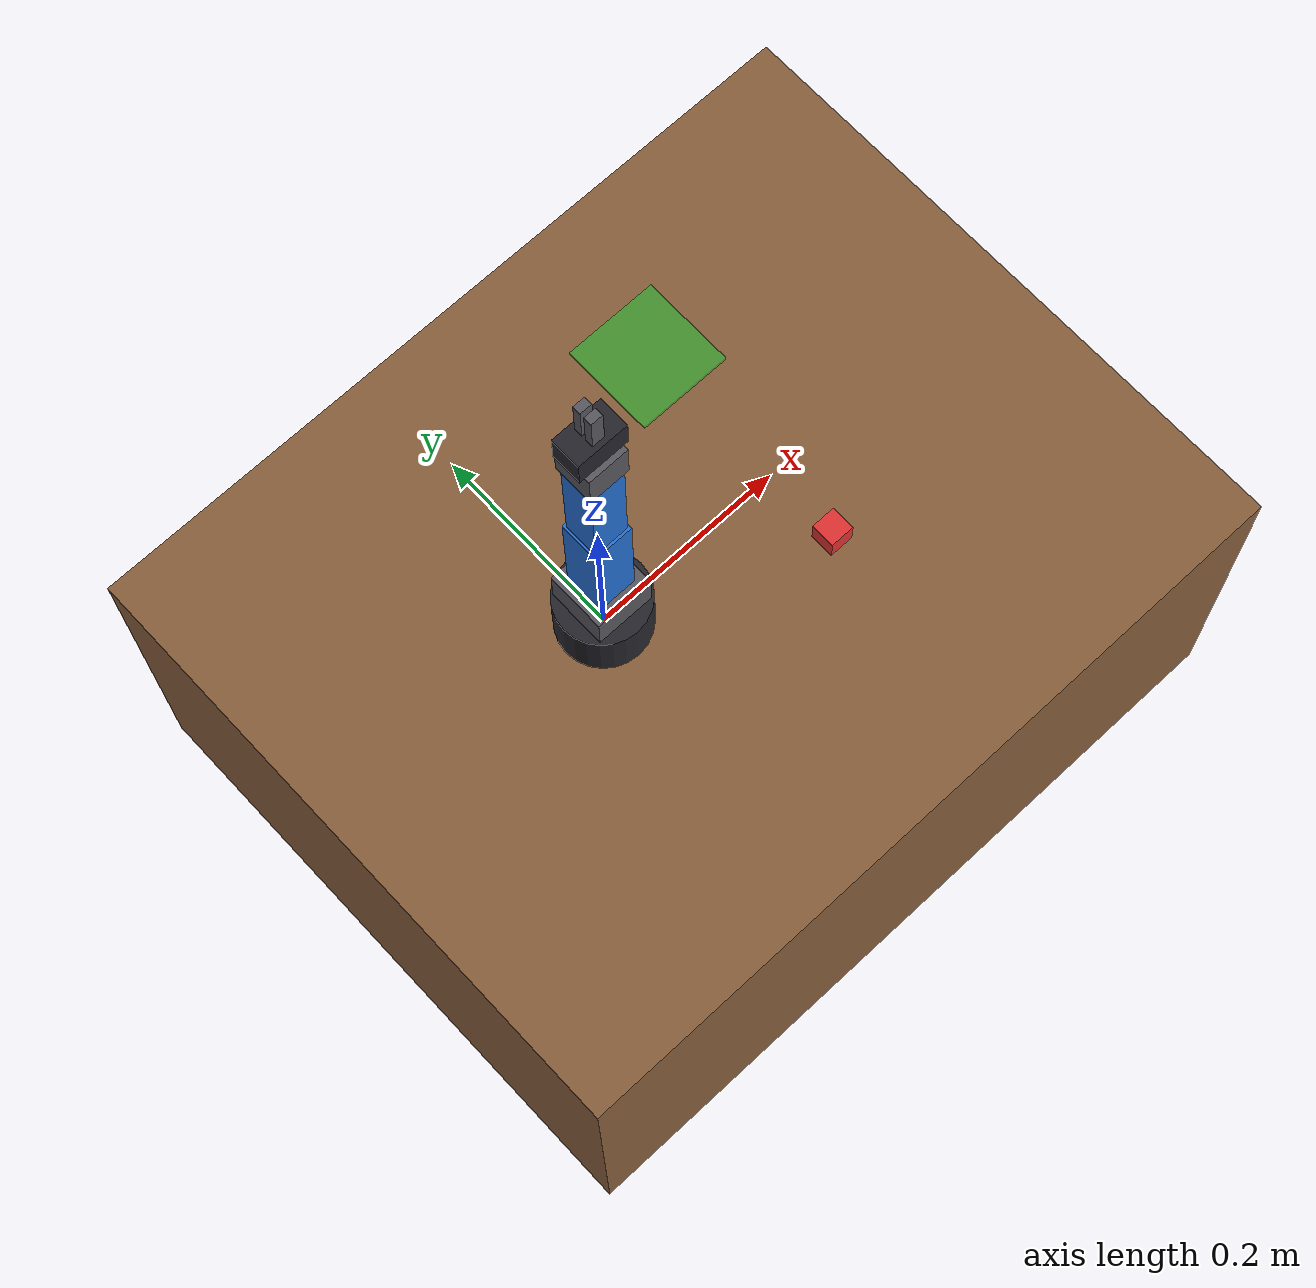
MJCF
<mujoco model="so101_sim">
  <compiler angle="radian" autolimits="true"/>
  <option gravity="0 0 -9.81" timestep="0.002" integrator="implicitfast"/>

  <visual>
    <global azimuth="50" elevation="-30"/>
    <headlight diffuse="0.6 0.6 0.6" ambient="0.4 0.4 0.4"/>
  </visual>

  <default>
    <joint damping="0.6"/>
    <geom friction="1 0.05 0.001"/>
    <!-- default position actuator gains; overridden per-actuator below -->
    <position kp="15" forcerange="-12 12"/>
  </default>

  <asset>
    <material name="grey"  rgba="0.35 0.35 0.38 1"/>
    <material name="blue"  rgba="0.15 0.45 0.85 1"/>
    <material name="dark"  rgba="0.15 0.15 0.18 1"/>
    <material name="desk"  rgba="0.55 0.38 0.24 1"/>
  </asset>

  <worldbody>
    <light pos="0.2 0 1.0" dir="0 0 -1" diffuse="0.8 0.8 0.8"/>

    <!-- Desk: static box whose top surface is at z = 0 (arm base mounts here). -->
    <geom name="desk" type="box" size="0.4 0.32 0.2" pos="0.1 0 -0.2" material="desk"/>

    <!-- Target pad: visual-only site (no collision). -->
    <site name="target" type="box" size="0.05 0.05 0.002" pos="0.2 0.16 0.002"
          rgba="0.1 0.8 0.2 0.55"/>

    <!-- Aim point for the fixed desk camera (sits over the workspace center). -->
    <body name="ws_center" pos="0.2 0.0 0.04">
      <site name="ws_center" size="0.001" rgba="0 0 0 0"/>
    </body>

    <!-- Desk camera: fixed, front-elevated view of the whole workspace. -->
    <camera name="desk" pos="0.2 -0.45 0.42" mode="targetbody" target="ws_center"/>

    <!-- Arm (fixed base). -->
    <body name="base_link" pos="0 0 0">
      <geom type="cylinder" size="0.045 0.03" pos="0 0 0.03" material="dark"/>

      <body name="shoulder_link" pos="0 0 0.06">
        <joint name="shoulder_pan" type="hinge" axis="0 0 1" range="-1.92 1.92"/>
        <geom type="box" size="0.03 0.03 0.02" pos="0 0 0.02" material="grey"/>

        <body name="upper_arm" pos="0 0 0.04">
          <joint name="shoulder_lift" type="hinge" axis="0 1 0" range="-1.92 1.92"/>
          <geom type="box" size="0.02 0.02 0.06" pos="0 0 0.06" material="blue"/>

          <body name="forearm" pos="0 0 0.12">
            <joint name="elbow_flex" type="hinge" axis="0 1 0" range="-1.92 1.92"/>
            <geom type="box" size="0.0175 0.0175 0.06" pos="0 0 0.06" material="blue"/>

            <body name="wrist_link" pos="0 0 0.12">
              <joint name="wrist_flex" type="hinge" axis="0 1 0" range="-1.92 1.92"/>
              <geom type="box" size="0.02 0.02 0.02" pos="0 0 0.02" material="grey"/>

              <body name="gripper_base" pos="0 0 0.04">
                <joint name="wrist_roll" type="hinge" axis="0 0 1" range="-2.6 2.6"/>
                <geom type="box" size="0.025 0.015 0.015" pos="0 0 0.015" material="dark"/>

                <body name="grasp_point" pos="0 0 0.10">
                  <site name="grasp_point" size="0.001" rgba="0 0 0 0"/>
                </body>

                <!-- Gripper camera: wrist-mounted, offset to the side so the gripper
                     body doesn't block the view, aimed at the grasp point. -->
                <camera name="gripper" pos="0.06 0 0.0" mode="targetbody"
                        target="grasp_point" fovy="75"/>

                <!-- Fingers: slide joints, opposite axes. ctrl 0 = closed, max = open. -->
                <body name="left_finger" pos="0 0.006 0.03">
                  <joint name="left_finger" type="slide" axis="0 1 0" range="0 0.024"/>
                  <geom type="box" size="0.006 0.004 0.02" pos="0 0 0.02" material="grey"/>
                </body>
                <body name="right_finger" pos="0 -0.006 0.03">
                  <joint name="right_finger" type="slide" axis="0 -1 0" range="0 0.024"/>
                  <geom type="box" size="0.006 0.004 0.02" pos="0 0 0.02" material="grey"/>
                </body>
              </body>
            </body>
          </body>
        </body>
      </body>
    </body>

    <!-- Block to pick up: free body resting on the desk top. -->
    <body name="block" pos="0.2 -0.08 0.0125">
      <freejoint name="block_free"/>
      <geom name="block" type="box" size="0.0125 0.0125 0.0125" rgba="0.9 0.2 0.2 1"
            mass="0.04" friction="1.2 0.05 0.001"/>
    </body>
  </worldbody>

  <actuator>
    <position name="shoulder_pan"  joint="shoulder_pan"  kp="18" ctrlrange="-1.92 1.92"/>
    <position name="shoulder_lift" joint="shoulder_lift" kp="20" ctrlrange="-1.92 1.92"/>
    <position name="elbow_flex"    joint="elbow_flex"    kp="16" ctrlrange="-1.92 1.92"/>
    <position name="wrist_flex"    joint="wrist_flex"    kp="12" ctrlrange="-1.92 1.92"/>
    <position name="wrist_roll"    joint="wrist_roll"    kp="8"  ctrlrange="-2.6 2.6"/>
    <position name="left_finger"   joint="left_finger"   kp="80" forcerange="-30 30" ctrlrange="0 0.024"/>
    <position name="right_finger"  joint="right_finger"  kp="80" forcerange="-30 30" ctrlrange="0 0.024"/>
  </actuator>
</mujoco>
